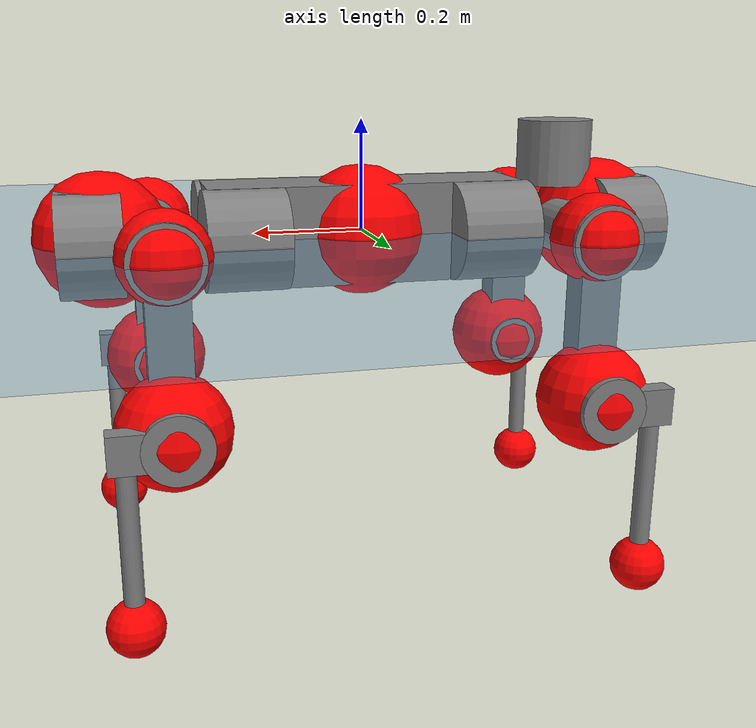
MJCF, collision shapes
<mujoco model="anymal_c">
  <compiler angle="radian" assetdir="assets" balanceinertia="true" inertiafromgeom="false"/>

  <option timestep="0.005" density="1.2" viscosity="2e-05"/>

  <size nkey="1"/>

  <visual>
    <quality shadowsize="8192"/>
    <map shadowclip="0.5"/>
  </visual>

  <default>
    <default class="/">
      <material specular="0" shininess="0.25"/>
      <geom contype="0" conaffinity="0" group="1" solref="-1000 -80"/>
      <site size="0.01 0.005 0.005" group="5"/>
      <general forcelimited="true" forcerange="-80 80" biastype="affine" gainprm="80" biasprm="0 -80 -2"/>
      <default class="anymal_c">
        <joint armature="0.01" damping="0.01" frictionloss="0.1"/>
        <default class="visual">
          <geom type="mesh" group="2"/>
          <default class="visual_zflip"/>
        </default>
        <default class="collision">
          <geom type="cylinder" group="3"/>
          <default class="foot">
            <geom size="0.03 0 0" type="sphere" condim="6" priority="1" friction="0.8 0.02 0.01" solimp="0.015 1 0.03"/>
          </default>
        </default>
      </default>
      <default class="reward_collision_sphere">
        <geom group="5" rgba="1 0 0 1"/>
      </default>
    </default>
  </default>

  <asset>
    <texture type="skybox" colorspace="auto" name="//unnamed_texture_0" builtin="gradient" rgb1="0.95 0.95 0.95" rgb2="0.95 0.95 0.95" width="100" height="600"/>
    <texture type="2d" colorspace="auto" name="texplane" builtin="checker" rgb1="0.345 0.575 0.748" rgb2="0.345 0.575 0.748" markrgb="1 1 1" width="512" height="512"/>
    <texture type="2d" colorspace="linear" name="base" file="base.png"/>
    <texture type="2d" colorspace="linear" name="top_shell" file="top_shell.png"/>
    <texture type="2d" colorspace="linear" name="bottom_shell" file="bottom_shell.png"/>
    <texture type="2d" colorspace="linear" name="remote" file="remote.png"/>
    <texture type="2d" colorspace="linear" name="hatch" file="hatch.png"/>
    <texture type="2d" colorspace="linear" name="handle" file="handle.png"/>
    <texture type="2d" colorspace="linear" name="face" file="face.png"/>
    <texture type="2d" colorspace="linear" name="battery" file="battery.png"/>
    <texture type="2d" colorspace="linear" name="lidar_cage" file="lidar_cage.png"/>
    <texture type="2d" colorspace="linear" name="depth_camera" file="depth_camera.png"/>
    <texture type="2d" colorspace="linear" name="wide_angle_camera" file="wide_angle_camera.png"/>
    <texture type="2d" colorspace="linear" name="lidar" file="lidar.png"/>
    <texture type="2d" colorspace="linear" name="drive" file="drive.png"/>
    <texture type="2d" colorspace="linear" name="hip_l" file="hip_l.png"/>
    <texture type="2d" colorspace="linear" name="shank_l" file="shank_l.png"/>
    <texture type="2d" colorspace="linear" name="foot" file="foot.png"/>
    <texture type="2d" colorspace="linear" name="thigh" file="thigh.png"/>
    <texture type="2d" colorspace="linear" name="shank_r" file="shank_r.png"/>
    <texture type="2d" colorspace="linear" name="hip_r" file="hip_r.png"/>
    <material name="MatPlane" class="/" texture="texplane" texuniform="true" texrepeat="2 2" specular="0.9" shininess="0.5"/>
    <material name="black_plastic" class="/" rgba="0.007 0.007 0.007 1"/>
    <material name="green" class="/" rgba="0.052 0.178 0.033 1"/>
    <material name="red" class="/" rgba="0.178 0.006 0.005 1"/>
    <material name="yellow" class="/" rgba="0.178 0.119 0.006 1"/>
    <material name="lwl" class="/" rgba="0.8 0.8 0.8 1"/>
    <material name="base" class="/" texture="base"/>
    <material name="top_shell" class="/" texture="top_shell"/>
    <material name="bottom_shell" class="/" texture="bottom_shell"/>
    <material name="hip_l" class="/" texture="hip_l"/>
    <material name="thigh" class="/" texture="thigh"/>
    <material name="shank_l" class="/" texture="shank_l"/>
    <material name="foot" class="/" texture="foot"/>
    <material name="hip_r" class="/" texture="hip_r"/>
    <material name="shank" class="/" texture="shank_r"/>
    <material name="hatch" class="/" texture="hatch"/>
    <material name="remote" class="/" texture="remote"/>
    <material name="handle" class="/" texture="handle"/>
    <material name="face" class="/" texture="face"/>
    <material name="depth_camera" class="/" texture="depth_camera"/>
    <material name="wide_angle_camera" class="/" texture="wide_angle_camera"/>
    <material name="battery" class="/" texture="battery"/>
    <material name="lidar_cage" class="/" texture="lidar_cage"/>
    <material name="lidar" class="/" texture="lidar"/>
    <material name="drive" class="/" texture="drive"/>
    <mesh name="base_0" class="/" file="base_0.obj"/>
    <mesh name="base_1" class="/" file="base_1.obj"/>
    <mesh name="base_2" class="/" file="base_2.obj"/>
    <mesh name="base_3" class="/" file="base_3.obj"/>
    <mesh name="base_4" class="/" file="base_4.obj"/>
    <mesh name="base_5" class="/" file="base_5.obj"/>
    <mesh name="top_shell" class="/" file="top_shell.obj"/>
    <mesh name="bottom_shell" class="/" file="bottom_shell.obj"/>
    <mesh name="remote" class="/" file="remote.obj"/>
    <mesh name="handle" class="/" file="handle.obj"/>
    <mesh name="face" class="/" file="face.obj"/>
    <mesh name="wide_angle_camera" class="/" file="wide_angle_camera.obj"/>
    <mesh name="depth_camera" class="/" file="depth_camera.obj"/>
    <mesh name="battery" class="/" file="battery.obj"/>
    <mesh name="lidar_cage" class="/" file="lidar_cage.obj"/>
    <mesh name="lidar" class="/" file="lidar.obj"/>
    <mesh name="drive" class="/" file="drive.obj"/>
    <mesh name="hip_l" class="/" file="hip_l.obj"/>
    <mesh name="thigh" class="/" file="thigh.obj"/>
    <mesh name="shank_l" class="/" file="shank_l.obj"/>
    <mesh name="foot" class="/" file="foot.obj"/>
    <mesh name="hip_r" class="/" file="hip_r.obj"/>
    <mesh name="hatch" class="/" file="hatch.obj"/>
    <mesh name="shank_r" class="/" file="shank_r.obj"/>
  </asset>

  <worldbody>
    <geom name="floor" class="/" size="100 100 0.125" type="plane" group="0" material="MatPlane"/>
    <light name="toplight_shadow" class="/" pos="0 0 5" dir="0.0990148 0.0990148 -0.990148" type="directional" ambient="0.04 0.04 0.04" diffuse="0.55 0.55 0.55" specular="0.12 0.12 0.12"/>
    <light name="toplight_fill" class="/" pos="0 0 5" dir="0.0990148 0.0990148 -0.990148" type="directional" castshadow="false" ambient="0.04 0.04 0.04" diffuse="0.3 0.3 0.3" specular="0.08 0.08 0.08"/>
    <body name="trunk" childclass="anymal_c" pos="2.17297e-05 1.31051e-05 0.000864011" quat="1 6.35488e-05 2.181e-06 -1.39408e-05">
      <inertial pos="0.00228137 -0.000157393 0.048255" quat="0.500227 0.499887 0.499894 0.499991" mass="18.9687" diaginertia="0.776398 0.477097 0.215078"/>
      <joint name="//unnamed_joint_0" type="free" armature="0" damping="0" frictionloss="0"/>
      <geom name="//unnamed_geom_1" class="visual" material="green" mesh="base_0"/>
      <geom name="//unnamed_geom_2" class="visual" material="yellow" mesh="base_1"/>
      <geom name="//unnamed_geom_3" class="visual" material="red" mesh="base_2"/>
      <geom name="//unnamed_geom_4" class="visual" material="black_plastic" mesh="base_3"/>
      <geom name="//unnamed_geom_5" class="visual" material="lwl" mesh="base_4"/>
      <geom name="//unnamed_geom_6" class="visual" material="base" mesh="base_5"/>
      <geom name="trunk_1" class="collision" size="0.2884 0.0696139 0.0895036" type="box"/>
      <geom name="trunk_2" class="collision" size="0.0895036 0.0721001" pos="0.2261 0.0663109 0" quat="0.707107 0 0.707107 0"/>
      <geom name="trunk_3" class="collision" size="0.0895036 0.0721001" pos="-0.2261 0.0663109 0" quat="0.707107 0 0.707107 0"/>
      <geom name="trunk_4" class="collision" size="0.0895036 0.0721001" pos="0.2261 -0.0663109 0" quat="0.707107 0 0.707107 0"/>
      <geom name="trunk_5" class="collision" size="0.0895036 0.0721001" pos="-0.2261 -0.0663109 0" quat="0.707107 0 0.707107 0"/>
      <geom name="//unnamed_geom_12" class="visual" material="top_shell" mesh="top_shell"/>
      <geom name="//unnamed_geom_13" class="visual" material="bottom_shell" mesh="bottom_shell"/>
      <geom name="//unnamed_geom_14" class="visual" material="remote" mesh="remote"/>
      <geom name="//unnamed_geom_15" class="visual" material="handle" mesh="handle"/>
      <geom name="//unnamed_geom_16" class="visual" pos="0.43089 0 0" quat="1 0 0 0" material="face" mesh="face"/>
      <geom name="trunk_6" class="collision" size="0.0546966 0.0696139 0.0895036" pos="0.488065 0 0" type="box"/>
      <geom name="//unnamed_geom_18" class="collision" size="0.0895036 0.0546966" pos="0.488065 0.0663109 0" quat="0.707107 0 0.707107 0"/>
      <geom name="//unnamed_geom_19" class="collision" size="0.0895036 0.0546966" pos="0.488065 -0.0663109 0" quat="0.707107 0 0.707107 0"/>
      <geom name="//unnamed_geom_20" class="visual" pos="0.479902 0 -0.0287748" quat="0.965926 0 0.258819 0" material="depth_camera" mesh="depth_camera"/>
      <geom name="//unnamed_geom_21" class="visual" pos="0.533285 0 0.0149193" material="wide_angle_camera" mesh="wide_angle_camera"/>
      <geom name="//unnamed_geom_22" class="visual_zflip" pos="-0.43089 0 0" quat="0 0 0 1" material="face" mesh="face"/>
      <geom name="trunk_7" class="collision" size="0.0546966 0.0696139 0.0895036" pos="-0.488065 0 0" quat="0 0 0 1" type="box"/>
      <geom name="//unnamed_geom_24" class="collision" size="0.0895036 0.0546966" pos="-0.488065 -0.0663109 0" quat="0 -0.707107 0 0.707107"/>
      <geom name="//unnamed_geom_25" class="collision" size="0.0895036 0.0546966" pos="-0.488065 0.0663109 0" quat="0 -0.707107 0 0.707107"/>
      <geom name="//unnamed_geom_26" class="visual" pos="-0.479902 0 -0.0287748" quat="0 -0.258819 0 0.965926" material="depth_camera" mesh="depth_camera"/>
      <geom name="//unnamed_geom_27" class="visual_zflip" pos="-0.533285 0 0.0149193" quat="0 0 0 1" material="wide_angle_camera" mesh="wide_angle_camera"/>
      <geom name="//unnamed_geom_28" class="visual" material="battery" mesh="battery"/>
      <geom name="//unnamed_geom_29" class="visual" pos="0 0.0712182 0.0292779" quat="0.683013 -0.183013 0.183013 0.683013" material="depth_camera" mesh="depth_camera"/>
      <geom name="//unnamed_geom_30" class="visual" pos="0 -0.0712182 0.0292779" quat="0.683013 0.183013 0.183013 -0.683013" material="depth_camera" mesh="depth_camera"/>
      <geom name="//unnamed_geom_31" class="visual" pos="-0.378393 0 0.0732511" quat="1 0 0 0" material="lidar_cage" mesh="lidar_cage"/>
      <geom name="trunk_8" class="collision" size="0.0696139 0.059669" pos="-0.378393 0 0.133048"/>
      <geom name="//unnamed_geom_33" class="visual" pos="-0.378393 -3.624e-05 0.141718" quat="0.707107 0 0 -0.707107" material="lidar" mesh="lidar"/>
      <geom name="//unnamed_geom_34" class="visual" pos="0.311758 0.0985365 -8.50693e-10" quat="0.258819 0.965926 0 0" material="drive" mesh="drive"/>
      <geom name="//unnamed_geom_35" class="visual" pos="0.311758 -0.0985365 8.50693e-10" quat="0.258819 -0.965926 0 0" material="drive" mesh="drive"/>
      <geom name="//unnamed_geom_36" class="visual" pos="-0.311758 0.0985365 8.50693e-10" quat="0 0 0.965926 -0.258819" material="drive" mesh="drive"/>
      <geom name="//unnamed_geom_37" class="visual" pos="-0.311758 -0.0985365 -8.50693e-10" quat="0 0 -0.965926 -0.258819" material="drive" mesh="drive"/>
      <geom name="//unnamed_geom_38" class="visual" pos="0.120587 0 0.0727528" quat="1 0 0 0" material="hatch" mesh="hatch"/>
      <geom name="//unnamed_geom_39" class="reward_collision_sphere" size="0.119338"/>
      <geom name="//unnamed_geom_40" class="reward_collision_sphere" size="0.119338" pos="0.467794 0 0"/>
      <geom name="//unnamed_geom_41" class="reward_collision_sphere" size="0.119338" pos="-0.467794 0 0"/>
      <site name="imu" pos="0.259946 0.0110369 0.0467971" size="0.00994484"/>
      <camera name="track" pos="0 -1.8946 0" quat="0.707107 0.707107 0 0" mode="trackcom"/>
      <camera name="ego_camera" pos="0.467794 0 -0.0398645" quat="-0.5 -0.5 0.5 0.5"/>
      <body name="LF_HIP" pos="0.311956 0.0991113 -9.52784e-05" quat="0.258978 0.965883 0.000146329 6.41727e-05">
        <inertial pos="0.0594918 -0.0144052 -0.00761538" quat="-0.127979 0.709765 -0.135288 0.679376" mass="2.70361" diaginertia="0.00706617 0.00375766 0.00318979"/>
        <joint name="LF_HAA" pos="0 0 0" axis="0.999998 3.16833e-05 -0.00174445" range="-0.716956 0.491295" armature="0.00959297" damping="0.00755634" frictionloss="0.102551"/>
        <geom name="//unnamed_geom_42" class="visual" pos="0 -5.00424e-05 8.21943e-06" quat="0.258819 -0.965926 0 0" material="hip_l" mesh="hip_l"/>
        <geom name="//unnamed_geom_43" class="visual" pos="0.0622685 -0.0742546 -0.0432357" quat="0.183013 -0.683013 0.683013 0.183013" material="drive" mesh="drive"/>
        <geom name="//unnamed_geom_44" class="collision" size="0.0497242 0.0696139" pos="0.0622685 -0.0113295 -0.00688161" quat="-0.353553 -0.612372 0.612372 -0.353553"/>
        <body name="LF_THIGH" pos="0.0626417 -0.0691837 -0.0421318" quat="0.183008 -0.683018 0.683006 0.183024">
          <inertial pos="0.0320487 0.000241006 -0.244192" quat="0.993163 -0.00515373 -0.0806746 0.0842122" mass="3.05208" diaginertia="0.036843 0.0226881 0.00412079"/>
          <joint name="LF_HFE" pos="0 0 0" axis="1 -1.38607e-05 5.42012e-05" stiffness="0.00577487" range="-3.12628 3.13546" armature="0.010163" damping="0.0079795" frictionloss="0.0980951"/>
          <geom name="//unnamed_geom_45" class="visual" pos="0.00183528 2.89198e-06 0" quat="0.707107 0 0 -0.707107" material="thigh" mesh="thigh"/>
          <geom name="//unnamed_geom_46" class="collision" size="0.0646415 0.0397794" pos="0.0415817 0 0" quat="0.5 0.5 -0.5 -0.5"/>
          <geom name="//unnamed_geom_47" class="collision" size="0.0372932 0.0298345 0.140535" pos="0.0311862 0 -0.140835" quat="0.707107 0 0 -0.707107" type="box"/>
          <geom name="//unnamed_geom_48" class="visual" pos="0.104266 0 -0.284035" quat="1 0 0 0" material="drive" mesh="drive"/>
          <geom name="//unnamed_geom_49" class="collision" size="0.0497242 0.0696139" pos="0.0314981 0 -0.284035" quat="0.707107 0 0.707107 0"/>
          <geom name="//unnamed_geom_50" class="reward_collision_sphere" size="0.0795587" pos="0.0259885 0 0"/>
          <body name="LF_SHANK" pos="0.10408 -0.00108586 -0.284955" quat="1 1.72481e-05 -2.05704e-05 -1.96282e-05">
            <inertial pos="0.00589349 -0.0579798 -0.0804797" quat="0.992959 -0.115711 -0.00113049 -0.025346" mass="0.583446" diaginertia="0.0123412 0.00709301 0.00110839"/>
            <joint name="LF_KFE" pos="0 0 0" axis="0.999994 0.00351828 0.000396187" range="-3.14301 3.13496" armature="0.00990667" damping="0.005726" frictionloss="0.103719"/>
            <geom name="//unnamed_geom_51" class="visual" pos="0.000598445 0.00319094 0" quat="0.707107 0 0 -0.707107" material="shank_l" mesh="shank_l"/>
            <geom name="LF_kfe_act" class="collision" size="0.059669 0.0198897" pos="0.0207908 0 0" quat="0.5 0.5 -0.5 -0.5"/>
            <geom name="//unnamed_geom_53" class="collision" size="0.0571818 0.0335638 0.0188952" pos="0.0207908 -0.0544687 0" quat="0.5 0.5 -0.5 -0.5" type="box"/>
            <geom name="//unnamed_geom_54" class="visual" pos="0.0135659 -0.0822865 -0.336825" quat="0.382683 0 0 -0.92388" material="foot" mesh="foot"/>
            <geom name="LF_calf" class="collision" size="0.0174035 0.140473" pos="0.013566 -0.0833148 -0.168413" quat="0.707107 0 0 -0.707107"/>
            <geom name="LF_foot" class="foot" size="0.0304566" pos="0.013566 -0.0833148 -0.314402" quat="0.707107 0 0 -0.707107"/>
            <geom name="//unnamed_geom_57" class="reward_collision_sphere" size="0.0994484" pos="-0.0519771 0 0"/>
            <geom name="//unnamed_geom_58" class="reward_collision_sphere" size="0.0497242" pos="0.013566 -0.0833148 -0.314402"/>
            <site name="LF_foot" class="foot" pos="0.013566 -0.0833148 -0.314402" quat="0.707107 0 0 -0.707107" size="0.00994484"/>
          </body>
        </body>
      </body>
      <body name="RF_HIP" pos="0.312356 -0.0983893 0.000642075" quat="0.259081 -0.965856 0.000162768 0.000276957">
        <inertial pos="0.0591709 0.0150262 -0.00855498" quat="0.134634 0.678956 0.127997 0.710288" mass="2.76094" diaginertia="0.00716645 0.00378975 0.00323631"/>
        <joint name="RF_HAA" pos="0 0 0" axis="0.999999 0.000415963 -0.001265" range="-0.508723 0.726548" armature="0.00988633" damping="0.0123936" frictionloss="0.103574"/>
        <geom name="//unnamed_geom_59" class="visual" pos="0 5.0042e-05 8.21941e-06" quat="0.258819 0.965926 0 0" material="hip_r" mesh="hip_r"/>
        <geom name="//unnamed_geom_60" class="visual" pos="0.0622685 0.0742546 -0.0432357" quat="0.183013 0.683013 0.683013 -0.183013" material="drive" mesh="drive"/>
        <geom name="//unnamed_geom_61" class="collision" size="0.0497242 0.0696139" pos="0.0622685 0.0113295 -0.00688161" quat="-0.353553 0.612372 0.612372 0.353553"/>
        <body name="RF_THIGH" pos="0.0629368 0.0682551 -0.0420177" quat="0.183046 0.683051 0.682978 -0.182966">
          <inertial pos="0.0322694 -2.00685e-05 -0.244677" quat="0.992853 -0.0053216 -0.0800573 0.088351" mass="3.05148" diaginertia="0.0369883 0.0229548 0.00415014"/>
          <joint name="RF_HFE" pos="0 0 0" axis="1 0.000509156 -0.000482111" stiffness="0.00560037" range="-3.13347 3.14322" armature="0.0100544" damping="0.0114745" frictionloss="0.0971937"/>
          <geom name="//unnamed_geom_62" class="visual" pos="0.00183528 2.89198e-06 0" quat="0.707107 0 0 -0.707107" material="thigh" mesh="thigh"/>
          <geom name="//unnamed_geom_63" class="collision" size="0.0646415 0.0397794" pos="0.0415817 0 0" quat="0.5 0.5 0.5 0.5"/>
          <geom name="//unnamed_geom_64" class="collision" size="0.0372932 0.0298345 0.140535" pos="0.0311862 0 -0.140835" quat="0.707107 0 0 0.707107" type="box"/>
          <geom name="//unnamed_geom_65" class="visual" pos="0.104266 0 -0.284035" quat="1 0 0 0" material="drive" mesh="drive"/>
          <geom name="//unnamed_geom_66" class="collision" size="0.0497242 0.0696139" pos="0.0314981 0 -0.284035" quat="0.707107 0 0.707107 0"/>
          <geom name="//unnamed_geom_67" class="reward_collision_sphere" size="0.0795587" pos="0.0259885 0 0"/>
          <body name="RF_SHANK" pos="0.103825 0.000613492 -0.28411" quat="1 -3.43236e-05 3.26569e-05 -7.07864e-05">
            <inertial pos="0.00568211 0.0576139 -0.0799289" quat="0.992965 0.115227 -0.0022645 0.0271807" mass="0.573521" diaginertia="0.0122046 0.00701984 0.001096"/>
            <joint name="RF_KFE" pos="0 0 0" axis="0.999983 0.00328979 0.00477297" stiffness="0.000678824" range="-3.12834 3.14915" armature="0.0100404" damping="0.00840282" frictionloss="0.0971292"/>
            <geom name="//unnamed_geom_68" class="visual" pos="0.000598442 -0.00319094 0" quat="0.707107 0 0 0.707107" material="shank" mesh="shank_r"/>
            <geom name="RF_kfe_act" class="collision" size="0.059669 0.0198897" pos="0.0207908 0 0" quat="0.5 0.5 0.5 0.5"/>
            <geom name="//unnamed_geom_70" class="collision" size="0.0571818 0.0335638 0.0188952" pos="0.0207908 0.0544687 0" quat="0.5 0.5 0.5 0.5" type="box"/>
            <geom name="//unnamed_geom_71" class="visual" pos="0.0135662 0.0822865 -0.336825" quat="0.382683 0 0 0.92388" material="foot" mesh="foot"/>
            <geom name="RF_calf" class="collision" size="0.0174035 0.140473" pos="0.013566 0.0833148 -0.168413" quat="0.707107 0 0 0.707107"/>
            <geom name="RF_foot" class="foot" size="0.0298652" pos="0.013566 0.0833148 -0.314402" quat="0.707107 0 0 0.707107"/>
            <geom name="//unnamed_geom_74" class="reward_collision_sphere" size="0.0994484" pos="-0.0519771 0 0"/>
            <geom name="//unnamed_geom_75" class="reward_collision_sphere" size="0.0497242" pos="0.013566 0.0833148 -0.314402"/>
            <site name="RF_foot" class="foot" pos="0.013566 0.0833148 -0.314402" quat="0.707107 0 0 0.707107" size="0.00994484"/>
          </body>
        </body>
      </body>
      <body name="LH_HIP" pos="-0.311587 0.0983425 0.000230358" quat="8.49645e-05 -5.07642e-05 0.965938 -0.258774">
        <inertial pos="0.059444 0.0148242 -0.0081996" quat="0.134396 0.678189 0.131124 0.710496" mass="2.71414" diaginertia="0.00713565 0.00371223 0.00324211"/>
        <joint name="LH_HAA" pos="0 0 0" axis="0.999984 -0.00561945 0.000232876" range="-0.48518 0.728616" armature="0.00998618" damping="0.0131719" frictionloss="0.0969477"/>
        <geom name="//unnamed_geom_76" class="visual" pos="0 5.0042e-05 8.21941e-06" quat="-0.258819 -0.965926 0 0" material="hip_r" mesh="hip_r"/>
        <geom name="//unnamed_geom_77" class="visual" pos="0.0622685 0.0742546 -0.0432357" quat="0.183013 0.683013 0.683013 -0.183013" material="drive" mesh="drive"/>
        <geom name="//unnamed_geom_78" class="collision" size="0.0497242 0.0696139" pos="0.0622685 0.0113295 -0.00688161" quat="-0.353553 0.612372 0.612372 0.353553"/>
        <body name="LH_THIGH" pos="0.0615825 0.069857 -0.0421505" quat="0.182834 0.682954 0.683111 -0.183043">
          <inertial pos="0.0317901 0.000785095 -0.244667" quat="0.992749 -0.00491971 -0.0808963 0.0887746" mass="3.04037" diaginertia="0.0365406 0.02294 0.00408479"/>
          <joint name="LH_HFE" pos="0 0 0" axis="1 0.000496486 -0.000170471" range="-3.14112 3.13719" armature="0.00997778" damping="0.0070425" frictionloss="0.0990742"/>
          <geom name="//unnamed_geom_79" class="visual" pos="0.00183528 2.89198e-06 0" quat="0.707107 0 0 -0.707107" material="thigh" mesh="thigh"/>
          <geom name="//unnamed_geom_80" class="collision" size="0.0646415 0.0397794" pos="0.0415817 0 0" quat="0.5 0.5 -0.5 -0.5"/>
          <geom name="//unnamed_geom_81" class="collision" size="0.0372932 0.0298345 0.140535" pos="0.0311862 0 -0.140835" quat="0.707107 0 0 -0.707107" type="box"/>
          <geom name="//unnamed_geom_82" class="visual" pos="0.104266 0 -0.284035" quat="1 0 0 0" material="drive" mesh="drive"/>
          <geom name="//unnamed_geom_83" class="collision" size="0.0497242 0.0696139" pos="0.0314981 0 -0.284035" quat="0.707107 0 0.707107 0"/>
          <geom name="//unnamed_geom_84" class="reward_collision_sphere" size="0.0795587" pos="0.0259885 0 0"/>
          <body name="LH_SHANK" pos="0.103889 -0.000439368 -0.284219" quat="1 -0.000279412 0.000212208 0.000317529">
            <inertial pos="0.00489746 0.0577083 -0.07947" quat="0.992935 0.115908 -0.00107154 0.0253985" mass="0.586628" diaginertia="0.0123825 0.00708328 0.00111885"/>
            <joint name="LH_KFE" pos="0 0 0" axis="0.999996 -0.00175919 0.00213941" range="-3.14643 3.12632" armature="0.0100005" damping="0.00506826" frictionloss="0.0975374"/>
            <geom name="//unnamed_geom_85" class="visual" pos="0.000598442 -0.00319094 0" quat="-0.707107 0 0 -0.707107" material="shank" mesh="shank_r"/>
            <geom name="LH_kfe_act" class="collision" size="0.059669 0.0198897" pos="0.0207908 0 0" quat="0.5 0.5 -0.5 -0.5"/>
            <geom name="//unnamed_geom_87" class="collision" size="0.0571818 0.0335638 0.0188952" pos="0.0207908 0.0544687 0" quat="0.5 0.5 -0.5 -0.5" type="box"/>
            <geom name="//unnamed_geom_88" class="visual" pos="0.0135662 0.0822865 -0.336825" quat="-0.382683 0 0 -0.92388" material="foot" mesh="foot"/>
            <geom name="LH_calf" class="collision" size="0.0174035 0.140473" pos="0.013566 0.0833148 -0.168413" quat="0.707107 0 0 -0.707107"/>
            <geom name="LH_foot" class="foot" size="0.0310335" pos="0.013566 0.0833148 -0.314402" quat="0.707107 0 0 -0.707107"/>
            <geom name="//unnamed_geom_91" class="reward_collision_sphere" size="0.0994484" pos="-0.0519771 0 0"/>
            <geom name="//unnamed_geom_92" class="reward_collision_sphere" size="0.0497242" pos="0.013566 0.0833148 -0.314402"/>
            <site name="LH_foot" class="foot" pos="0.013566 0.0833148 -0.314402" quat="0.707107 0 0 -0.707107" size="0.00994484"/>
          </body>
        </body>
      </body>
      <body name="RH_HIP" pos="-0.311668 -0.0993496 0.000639358" quat="0.000175607 -6.02014e-05 -0.96593 -0.258803">
        <inertial pos="0.059326 -0.0149662 -0.00818182" quat="-0.129637 0.710502 -0.135761 0.678196" mass="2.74751" diaginertia="0.00711334 0.00381199 0.00327203"/>
        <joint name="RH_HAA" pos="0 0 0" axis="0.999999 0.000470347 0.00139479" range="-0.712951 0.501696" armature="0.0101756" damping="0.0111156" frictionloss="0.0954478"/>
        <geom name="//unnamed_geom_93" class="visual" pos="0 -5.00424e-05 8.21943e-06" quat="-0.258819 0.965926 0 0" material="hip_l" mesh="hip_l"/>
        <geom name="//unnamed_geom_94" class="visual" pos="0.0622685 -0.0742546 -0.0432357" quat="-0.183013 0.683013 -0.683013 -0.183013" material="drive" mesh="drive"/>
        <geom name="//unnamed_geom_95" class="collision" size="0.0497242 0.0696139" pos="0.0622685 -0.0113295 -0.00688161" quat="0.353553 0.612372 -0.612372 0.353553"/>
        <body name="RH_THIGH" pos="0.0622049 -0.0689437 -0.0423476" quat="-0.183012 0.683011 -0.683013 -0.183019">
          <inertial pos="0.0322086 0.00047113 -0.24539" quat="0.992871 -0.00452194 -0.0803398 0.0879319" mass="2.99908" diaginertia="0.0365482 0.0225948 0.00410174"/>
          <joint name="RH_HFE" pos="0 0 0" axis="0.999986 -0.00480309 0.00226631" range="-3.14235 3.14856" armature="0.0101915" damping="0.00798756" frictionloss="0.101411"/>
          <geom name="//unnamed_geom_96" class="visual" pos="0.00183528 2.89198e-06 0" quat="0.707107 0 0 -0.707107" material="thigh" mesh="thigh"/>
          <geom name="//unnamed_geom_97" class="collision" size="0.0646415 0.0397794" pos="0.0415817 0 0" quat="0.5 0.5 0.5 0.5"/>
          <geom name="//unnamed_geom_98" class="collision" size="0.0372932 0.0298345 0.140535" pos="0.0311862 0 -0.140835" quat="0.707107 0 0 0.707107" type="box"/>
          <geom name="//unnamed_geom_99" class="visual" pos="0.104266 0 -0.284035" quat="1 0 0 0" material="drive" mesh="drive"/>
          <geom name="//unnamed_geom_100" class="collision" size="0.0497242 0.0696139" pos="0.0314981 0 -0.284035" quat="0.707107 0 0.707107 0"/>
          <geom name="//unnamed_geom_101" class="reward_collision_sphere" size="0.0795587" pos="0.0259885 0 0"/>
          <body name="RH_SHANK" pos="0.104398 0.00110067 -0.283946" quat="1 -0.000261116 7.19224e-05 -0.000237733">
            <inertial pos="0.00528683 -0.057927 -0.0804739" quat="0.992993 -0.115437 -0.00101539 -0.0252816" mass="0.58417" diaginertia="0.0124549 0.00705175 0.00111449"/>
            <joint name="RH_KFE" pos="0 0 0" axis="0.999982 -0.00575445 -0.00191388" range="-3.13997 3.12713" armature="0.00997762" damping="0.00855906" frictionloss="0.0995547"/>
            <geom name="//unnamed_geom_102" class="visual" pos="0.000598445 0.00319094 0" quat="0.707107 0 0 -0.707107" material="shank_l" mesh="shank_l"/>
            <geom name="RH_kfe_act" class="collision" size="0.059669 0.0198897" pos="0.0207908 0 0" quat="0.5 0.5 0.5 0.5"/>
            <geom name="//unnamed_geom_104" class="collision" size="0.0571818 0.0335638 0.0188952" pos="0.0207908 -0.0544687 0" quat="0.5 0.5 0.5 0.5" type="box"/>
            <geom name="//unnamed_geom_105" class="visual" pos="0.0135659 -0.0822865 -0.336825" quat="0.382683 0 0 -0.92388" material="foot" mesh="foot"/>
            <geom name="RH_calf" class="collision" size="0.0174035 0.140473" pos="0.013566 -0.0833148 -0.168413" quat="0.707107 0 0 0.707107"/>
            <geom name="RH_foot" class="foot" size="0.0269895" pos="0.013566 -0.0833148 -0.314402" quat="0.707107 0 0 0.707107"/>
            <geom name="//unnamed_geom_108" class="reward_collision_sphere" size="0.0994484" pos="-0.0519771 0 0"/>
            <geom name="//unnamed_geom_109" class="reward_collision_sphere" size="0.0497242" pos="0.013566 -0.0833148 -0.314402"/>
            <site name="RH_foot" class="foot" pos="0.013566 -0.0833148 -0.314402" quat="0.707107 0 0 0.707107" size="0.00994484"/>
          </body>
        </body>
      </body>
    </body>
  </worldbody>

  <contact>
    <pair class="/" geom1="floor" geom2="LF_foot" name="//unnamed_contact_0"/>
    <pair class="/" geom1="floor" geom2="RF_foot" name="//unnamed_contact_1"/>
    <pair class="/" geom1="floor" geom2="LH_foot" name="//unnamed_contact_2"/>
    <pair class="/" geom1="floor" geom2="RH_foot" name="//unnamed_contact_3"/>
  </contact>

  <actuator>
    <general name="LF_HAA" class="/" joint="LF_HAA" forcerange="-81.8385 81.8385" gainprm="79.61" biasprm="0 -79.61 -1.91301"/>
    <general name="LF_HFE" class="/" joint="LF_HFE" forcerange="-78.4064 78.4064" gainprm="79.61" biasprm="0 -79.61 -1.91301"/>
    <general name="LF_KFE" class="/" joint="LF_KFE" forcerange="-81.1297 81.1297" gainprm="79.61" biasprm="0 -79.61 -1.91301"/>
    <general name="RF_HAA" class="/" joint="RF_HAA" forcerange="-78.7901 78.7901" gainprm="79.61" biasprm="0 -79.61 -1.91301"/>
    <general name="RF_HFE" class="/" joint="RF_HFE" forcerange="-80.4684 80.4684" gainprm="79.61" biasprm="0 -79.61 -1.91301"/>
    <general name="RF_KFE" class="/" joint="RF_KFE" forcerange="-80.3034 80.3034" gainprm="79.61" biasprm="0 -79.61 -1.91301"/>
    <general name="LH_HAA" class="/" joint="LH_HAA" forcerange="-77.4145 77.4145" gainprm="79.61" biasprm="0 -79.61 -1.91301"/>
    <general name="LH_HFE" class="/" joint="LH_HFE" forcerange="-79.9126 79.9126" gainprm="79.61" biasprm="0 -79.61 -1.91301"/>
    <general name="LH_KFE" class="/" joint="LH_KFE" forcerange="-81.3196 81.3196" gainprm="79.61" biasprm="0 -79.61 -1.91301"/>
    <general name="RH_HAA" class="/" joint="RH_HAA" forcerange="-79.1455 79.1455" gainprm="79.61" biasprm="0 -79.61 -1.91301"/>
    <general name="RH_HFE" class="/" joint="RH_HFE" forcerange="-79.5401 79.5401" gainprm="79.61" biasprm="0 -79.61 -1.91301"/>
    <general name="RH_KFE" class="/" joint="RH_KFE" forcerange="-78.5415 78.5415" gainprm="79.61" biasprm="0 -79.61 -1.91301"/>
  </actuator>

  <sensor>
    <gyro site="imu" name="imu_angular_velocity"/>
    <velocimeter site="imu" name="imu_linear_velocity"/>
    <framelinvel objtype="site" objname="LF_foot" name="LF_foot_global_linear_velocity"/>
    <framelinvel objtype="site" objname="RF_foot" name="RF_foot_global_linear_velocity"/>
    <framelinvel objtype="site" objname="LH_foot" name="LH_foot_global_linear_velocity"/>
    <framelinvel objtype="site" objname="RH_foot" name="RH_foot_global_linear_velocity"/>
  </sensor>

  <keyframe>
    <key name="home" qpos="0 0 0.55 1 0 0 0 0 0.4 -0.8 0 -0.4 0.8 0 -0.4 0.8 0 0.4 -0.8"/>
  </keyframe>
</mujoco>
